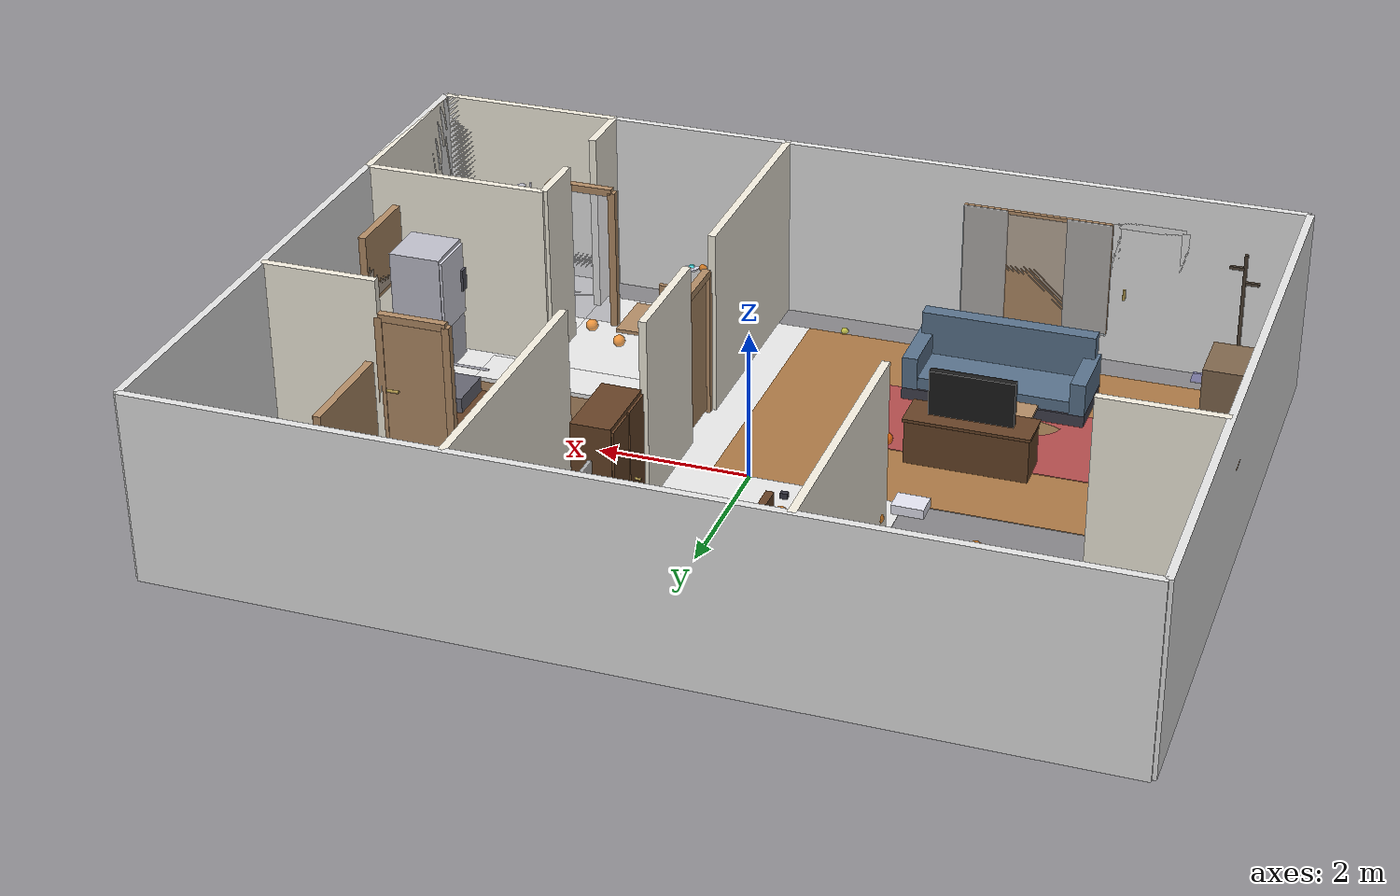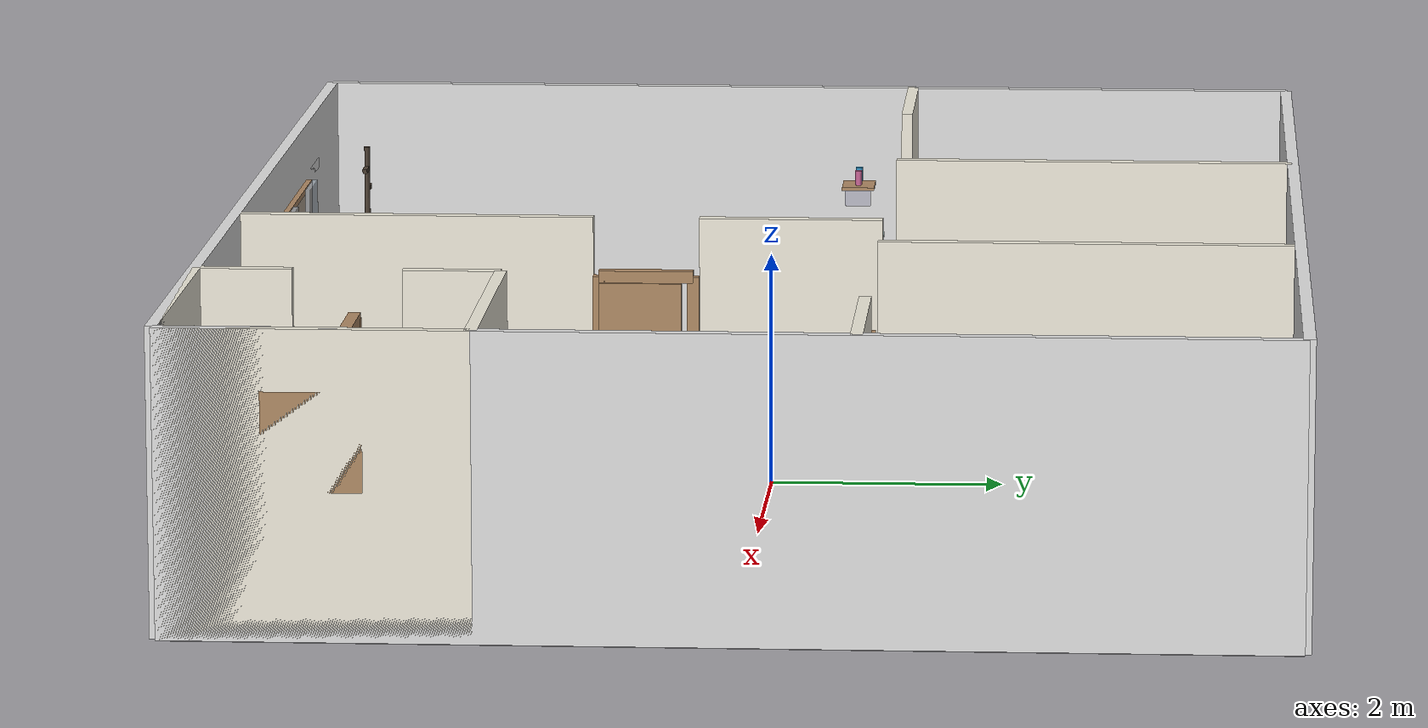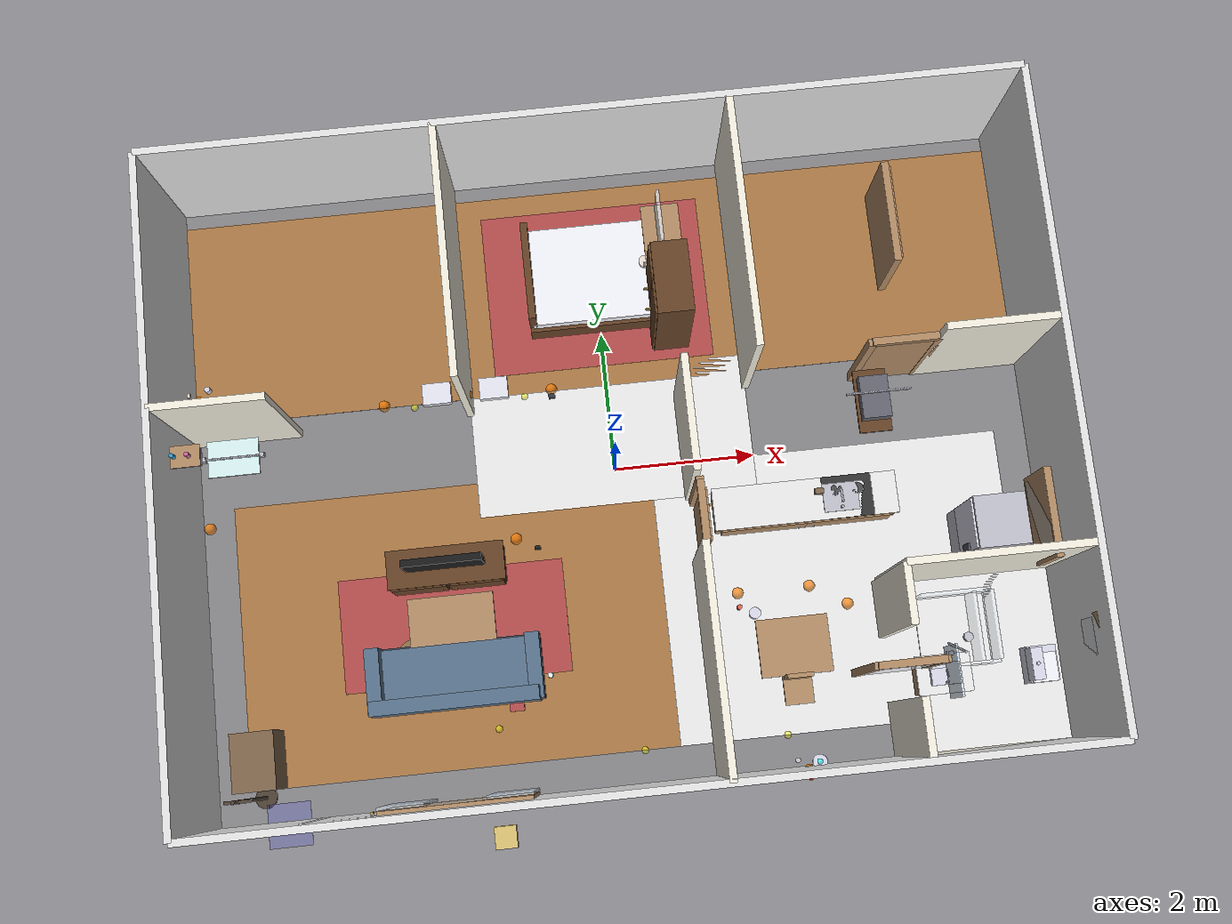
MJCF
<mujoco model="home_complete">

  <!-- 编译器选项 -->
  <compiler angle="degree" coordinate="local" inertiafromgeom="true" meshdir="../assets/meshes"/>

  <!-- 仿真选项 -->
  <option timestep="0.003" iterations="100" gravity="0 0 -9.81">
    <flag warmstart="enable"/>
  </option>

  <!-- 默认物理参数 -->
  <default>
    <geom solref="0.01 1" solimp="0.95 0.95 0.001"/>
    <joint damping="2" armature="0.01"/>
  </default>

  <!-- ====================================================================
       资源定义：纹理和材质
       ====================================================================== -->
  <asset>
    <!-- 地板纹理 -->
    <texture name="wood_floor_texture" type="2d" builtin="checker"
             rgb1="0.72 0.52 0.32" rgb2="0.62 0.42 0.22"
             width="512" height="512" mark="edge" markrgb="0.45 0.30 0.15"/>

    <texture name="tile_floor_texture" type="2d" builtin="checker"
             rgb1="0.95 0.95 0.95" rgb2="0.88 0.88 0.88"
             width="512" height="512" mark="none"/>

    <texture name="carpet_texture" type="2d" builtin="checker"
             rgb1="0.75 0.35 0.35" rgb2="0.65 0.25 0.25"
             width="256" height="256" mark="none"/>

    <!-- 墙壁纹理 -->
    <texture name="wall_texture" type="2d" builtin="flat"
             rgb1="0.96 0.94 0.88" width="512" height="512"/>

    <texture name="wallpaper_texture" type="2d" builtin="gradient"
             rgb1="0.92 0.90 0.85" rgb2="0.88 0.86 0.80"
             width="512" height="512"/>

    <!-- 家具纹理 -->
    <texture name="wood_dark_texture" type="2d" builtin="gradient"
             rgb1="0.45 0.30 0.18" rgb2="0.35 0.22 0.12"
             width="512" height="512" mark="cross" markrgb="0.30 0.18 0.08"/>

    <texture name="wood_light_texture" type="2d" builtin="gradient"
             rgb1="0.75 0.60 0.45" rgb2="0.65 0.50 0.35"
             width="512" height="512" mark="cross" markrgb="0.55 0.40 0.25"/>

    <texture name="fabric_texture" type="2d" builtin="flat"
             rgb1="0.35 0.45 0.55" width="512" height="512"/>

    <texture name="metal_texture" type="2d" builtin="flat"
             rgb1="0.75 0.75 0.80" width="256" height="256"/>

    <texture name="ceramic_texture" type="2d" builtin="gradient"
             rgb1="0.9 0.9 0.95" rgb2="0.8 0.8 0.88" width="256" height="256"/>

    <!-- 材质定义 -->
    <material name="wood_floor_mat" texture="wood_floor_texture"
              specular="0.1" shininess="0.1" reflectance="0.02"/>

    <material name="tile_floor_mat" texture="tile_floor_texture"
              specular="0.1" shininess="0.1" reflectance="0.02"/>

    <material name="carpet_mat" texture="carpet_texture"
              specular="0.05" shininess="0.01" reflectance="0"/>

    <material name="wall_mat" texture="wall_texture"
              specular="0.1" shininess="0.05" reflectance="0.0"/>
    <material name="wall_ext_mat" rgba="0.9 0.9 0.9 1.0" specular="0.1" shininess="0.05" reflectance="0.0"/>

    <material name="wallpaper_mat" texture="wallpaper_texture"
              specular="0.1" shininess="0.05" reflectance="0.01"/>

    <material name="wood_dark_mat" texture="wood_dark_texture"
              specular="0.5" shininess="0.35" reflectance="0.08"/>

    <material name="wood_light_mat" texture="wood_light_texture"
              specular="0.5" shininess="0.35" reflectance="0.08"/>

    <material name="fabric_mat" texture="fabric_texture"
              specular="0.1" shininess="0.02" reflectance="0.01"/>

    <material name="metal_mat" texture="metal_texture"
              specular="0.9" shininess="0.7" reflectance="0.3"/>

    <material name="ceramic_mat" texture="ceramic_texture"
              specular="0.8" shininess="0.6" reflectance="0.15"/>

    <!-- 茶壶网格 -->
    <mesh name="teapot_mesh" file="teapot_simple.obj" scale="1.0 1.0 1.0"/>
    <!-- 机器人材质 -->
    <material name="ur5_metal" rgba="0.6 0.7 0.8 1" specular="0.5" shininess="0.3"/>
    <material name="ur5_joint" rgba="0.2 0.2 0.2 1" specular="0.5" shininess="0.3"/>
  </asset>

  <!-- ====================================================================
       视觉效果设置
       ====================================================================== -->
  <visual>
    <global offwidth="1920" offheight="1080" elevation="-25" azimuth="135" fovy="50"/>
    <quality shadowsize="4096" offsamples="8"/>
    <map force="0.1" zfar="50" znear="0.08"/>
    <headlight ambient="0.4 0.4 0.4" diffuse="0.8 0.8 0.8" specular="0.4 0.4 0.4"/>
  </visual>

  <!-- ====================================================================
       世界定义
       ====================================================================== -->
  <worldbody>
    <!-- 光照系统 -->
    <!-- 主光源（天花板中央） -->
    <light name="ceiling_main" pos="0 -1 2.8" dir="0 0 -1"
           directional="false" diffuse="0.9 0.9 0.85" specular="0.6 0.6 0.6"
           castshadow="false"/>

    <!-- 客厅补光 -->
    <light name="living_room_light" pos="-1 -3 2.5" dir="0 0 -1"
           directional="false" diffuse="0.7 0.7 0.7" specular="0.4 0.4 0.4"
           castshadow="false"/>

    <!-- 厨房补光 -->
    <light name="kitchen_light" pos="2.5 -3.5 2.5" dir="0 0 -1"
           directional="false" diffuse="0.8 0.8 0.8" specular="0.5 0.5 0.5"
           castshadow="false"/>

    <!-- 卧室补光 -->
    <light name="bedroom_light" pos="-2 0.5 2.3" dir="0 0 -1"
           directional="false" diffuse="0.6 0.6 0.55" specular="0.3 0.3 0.3"
           castshadow="false"/>

    <!-- 浴室主光源 -->
    <light name="bathroom_light" pos="-5.2 0.5 2.3" dir="0 0 -1"
           directional="false" diffuse="0.95 0.95 1.0" specular="0.7 0.7 0.7"
           castshadow="false"/>

    <!-- ====================================================================
         地板系统（不同房间不同材质）
         ====================================================================== -->

    <!-- 主地板基础层 -->
    <geom name="floor_base" type="plane" size="6 4.5 0.1"
          rgba="0.5 0.5 0.5 1" condim="3" friction="1.0 0.5 0.01"
          solref="0.02 1" solimp="0.9 0.95 0.001"/>

    <!-- 客厅地板（木地板） -->
    <geom name="floor_living_room" type="box" pos="-2.5 -2 0.005" size="3 2 0.005"
          material="wood_floor_mat" friction="1.0 0.5 0.01" contype="0" conaffinity="0"/>

    <!-- 厨房地板（瓷砖） -->
    <geom name="floor_kitchen" type="box" pos="3.0 -2 0.005" size="2.5 2 0.005"
          material="tile_floor_mat" friction="0.8 0.4 0.01" contype="0" conaffinity="0"/>

    <!-- 卧室地板（木地板） -->
    <geom name="floor_bedroom_mid" type="box" pos="0 2.75 0.005" size="2 1.5 0.005"
          material="wood_floor_mat" friction="1.0 0.5 0.01" contype="0" conaffinity="0"/>
    <geom name="floor_bedroom_left" type="box" pos="-4 2.75 0.005" size="2 1.5 0.005" material="wood_floor_mat" contype="0" conaffinity="0"/>
    <geom name="floor_bedroom_right" type="box" pos="4 2.75 0.005" size="2 1.5 0.005" material="wood_floor_mat" contype="0" conaffinity="0"/>

    <!-- 浴室地板（防滑瓷砖） -->
    <geom name="floor_bathroom" type="box" pos="4.75 -3.25 0.005" size="1.25 1.25 0.005"
          material="tile_floor_mat" friction="1.2 0.6 0.02" contype="0" conaffinity="0"/>

    <!-- 玄关地板（瓷砖） -->
    <geom name="floor_entrance" type="box" pos="0 0.5 0.005" size="2 1 0.005"
          material="tile_floor_mat" friction="0.8 0.4 0.01" contype="0" conaffinity="0"/>

    <!-- 客厅地毯 -->
    <geom name="carpet_living_room" type="box" pos="-2.5 -2 0.012" size="1.6 0.8 0.008"
          material="carpet_mat" friction="1.8 0.9 0.02" contype="0" conaffinity="0"
          solref="0.005 0.5" solimp="0.95 0.98 0.001"/>

    <!-- ====================================================================
         墙壁系统
         ====================================================================== -->

    <!-- 外墙 -->
    <geom name="wall_north" type="box" pos="0 4.5 1.25" size="6 0.05 1.25" material="wall_ext_mat"/>

    <geom name="wall_south" type="box" pos="0 -4.5 1.25" size="6 0.05 1.25" material="wall_ext_mat"/>

    <!-- Modified: 右侧外墙拆分为上下段，为入户门预留门洞 -->
    <geom name="wall_east" type="box" pos="6 0 1.25" size="0.05 4.5 1.25" material="wall_ext_mat"/>

    <geom name="wall_west" type="box" pos="-6 0 1.25" size="0.05 4.5 1.25" material="wall_ext_mat"/>

    <geom name="wall_h_mid_left" type="box" pos="-5.225 1 1.25" size="0.775 0.05 1.25" material="wall_mat"/>
    <geom name="wall_h_mid_right" type="box" pos="5.225 1 1.25" size="0.775 0.05 1.25" material="wall_mat"/>

    <geom name="wall_v_left_top" type="box" pos="-2 2.75 1.25" size="0.05 1.75 1.25" material="wall_mat"/>
    <geom name="wall_v_right_top" type="box" pos="2 2.75 1.25" size="0.05 1.75 1.25" material="wall_mat"/>
    <geom name="wall_v_kitchen_bottom" type="box" pos="1 -2.975 1.25" size="0.05 1.525 1.25" material="wall_mat"/>
    <geom name="wall_v_kitchen_top" type="box" pos="1 0.225 1.25" size="0.05 0.775 1.25" material="wall_mat"/>
    <geom name="bath_wall_e" type="box" pos="6 -3.25 1.25" size="0.05 1.25 1.25" material="wall_mat"/>
    <geom name="bath_wall_n" type="box" pos="4.75 -2 1.25" size="1.25 0.05 1.25" material="wall_mat"/>
    <geom name="bath_wall_s" type="box" pos="4.75 -4.5 1.25" size="1.25 0.05 1.25" material="wall_mat"/>
    <geom name="bath_wall_w_bottom" type="box" pos="3.5 -4.1 1.25" size="0.05 0.4 1.25" material="wall_mat"/>
    <geom name="bath_wall_w_top" type="box" pos="3.5 -2.4 1.25" size="0.05 0.4 1.25" material="wall_mat"/>

    <!-- ====================================================================
         门系统（带铰链物理）
         ====================================================================== -->

    <body name="main_door" pos="-4 -4.5 0">
      <geom name="main_door_frame_left" type="box" pos="-0.45 0 1.0" size="0.05 0.05 1.0" material="wall_ext_mat"/>
      <geom name="main_door_frame_right" type="box" pos="0.45 0 1.0" size="0.05 0.05 1.0" material="wall_ext_mat"/>
      <geom name="main_door_frame_top" type="box" pos="0 0 2.0" size="0.45 0.05 0.05" material="wall_ext_mat"/>
      <body name="main_door_panel" pos="-0.45 0 1.0">
        <joint name="main_door_hinge" type="hinge" pos="0 0 0" axis="0 0 1" range="-5 90" damping="5" armature="0.1"/>
        <geom name="main_door_board" type="box" pos="0.45 0 0" size="0.45 0.04 0.95" rgba="0.8 0.8 0.82 1"/>
        <geom name="main_door_handle" type="cylinder" pos="0.75 0.06 0" size="0.02 0.08" rgba="0.7 0.6 0.3 1"/>
      </body>
    </body>

    <!-- 门3：厨房门 -->
    <body name="kitchen_door" pos="1 -1 0">
      <geom name="kitchen_door_frame_left" type="box" pos="0.05 -0.4 1.0" size="0.05 0.05 1.0"
            material="wood_light_mat"/>
      <geom name="kitchen_door_frame_right" type="box" pos="0.05 0.4 1.0" size="0.05 0.05 1.0"
            material="wood_light_mat"/>
      <geom name="kitchen_door_frame_top" type="box" pos="0.05 0 2.0" size="0.05 0.4 0.05"
            material="wood_light_mat"/>

      <!-- 门板 -->
      <body name="kitchen_door_panel" pos="0.05 -0.4 1.0">
        <joint name="kitchen_door_hinge" type="hinge" pos="0 0 0" axis="0 0 1"
               range="-5 90" damping="5" armature="0.1"/>
        <geom name="kitchen_door_board" type="box" pos="0.04 0.35 0" size="0.04 0.35 0.95"
              material="wood_light_mat" mass="10" friction="1.0 0.5 0.01"/>
        <geom name="kitchen_door_handle" type="cylinder" pos="0.1 0.6 0" size="0.02 0.08"
              rgba="0.7 0.6 0.3 1" mass="0.2" euler="0 90 0"/>
      </body>
    </body>

    <!-- 门4：浴室门 -->
    <body name="bathroom_door" pos="3.5 -3.25 0">
      <geom name="bathroom_door_frame_left" type="box" pos="-0.45 0 1.0" size="0.05 0.05 1.0" material="wood_light_mat"/>
      <geom name="bathroom_door_frame_right" type="box" pos="0.45 0 1.0" size="0.05 0.05 1.0" material="wood_light_mat"/>
      <geom name="bathroom_door_frame_top" type="box" pos="0 0 2.0" size="0.45 0.05 0.05" material="wood_light_mat"/>
      <body name="bathroom_door_panel" pos="-0.45 0 1.0">
        <joint name="bathroom_door_hinge" type="hinge" pos="0 0 0" axis="0 0 1" range="-5 90" damping="5" armature="0.1"/>
        <geom name="bathroom_door_board" type="box" pos="0.45 0 0" size="0.45 0.04 0.95" rgba="0.95 0.95 0.98 0.7" mass="10" friction="1.0 0.5 0.01"/>
        <geom name="bathroom_door_handle" type="cylinder" pos="0.75 0.06 0" size="0.02 0.08" rgba="0.85 0.85 0.88 1" mass="0.2" euler="0 90 0"/>
      </body>
    </body>

    <body name="entrance_door" pos="4 1 0">
      <geom name="entrance_door_frame_left" type="box" pos="-0.45 0 1.0" size="0.05 0.05 1.0" material="wood_light_mat"/>
      <geom name="entrance_door_frame_right" type="box" pos="0.45 0 1.0" size="0.05 0.05 1.0" material="wood_light_mat"/>
      <geom name="entrance_door_frame_top" type="box" pos="0 0 2.0" size="0.45 0.05 0.05" material="wood_light_mat"/>
      <body name="entrance_door_panel" pos="-0.45 0 1.0">
        <joint name="entrance_door_hinge" type="hinge" pos="0 0 0" axis="0 0 1" range="-5 90" damping="5" armature="0.1"/>
        <geom name="entrance_door_board" type="box" pos="0.45 0 0" size="0.45 0.04 0.95" material="wood_light_mat" mass="10" friction="1.0 0.5 0.01"/>
        <geom name="entrance_door_handle" type="cylinder" pos="0.75 0.06 0" size="0.02 0.08" rgba="0.7 0.6 0.3 1" mass="0.2" euler="0 90 0"/>
      </body>
    </body>

    <!-- ====================================================================
         玄关家具
         ====================================================================== -->

    <!-- 鞋柜 -->
    <body name="shoe_cabinet" pos="-5.3 -3.6 0.35">
      <geom name="shoe_cabinet_body" type="box" size="0.3 0.4 0.4" rgba="0.5 0.4 0.3 1"/>
    </body>

    <!-- 衣架 -->
    <body name="coat_rack" pos="-5.3 -4.1 0">
      <geom name="coat_rack_base" type="cylinder" size="0.15 0.02"
            rgba="0.3 0.25 0.2 1" mass="3"/>
      <geom name="coat_rack_pole" type="cylinder" pos="0 0 1.0" size="0.025 1.0"
            rgba="0.3 0.25 0.2 1" mass="2"/>
      <geom name="coat_rack_hook1" type="box" pos="0.1 0 1.8" size="0.1 0.02 0.02"
            rgba="0.3 0.25 0.2 1" mass="0.1"/>
      <geom name="coat_rack_hook2" type="box" pos="-0.1 0 1.6" size="0.1 0.02 0.02"
            rgba="0.3 0.25 0.2 1" mass="0.1"/>
    </body>

    <!-- ====================================================================
         客厅家具
         ====================================================================== -->

    <!-- 茶几 -->
    <body name="coffee_table" pos="-2.5 -2 0.35">
      <geom name="table_top" type="box" size="0.6 0.4 0.025"
            material="wood_light_mat" mass="12" friction="0.8 0.4 0.01"/>
      <geom name="leg_1" type="cylinder" pos="0.5 0.3 -0.2" size="0.03 0.175"
            rgba="0.35 0.25 0.15 1" mass="1.2" friction="1.0 0.5 0.01"/>
      <geom name="leg_2" type="cylinder" pos="0.5 -0.3 -0.2" size="0.03 0.175"
            rgba="0.35 0.25 0.15 1" mass="1.2" friction="1.0 0.5 0.01"/>
      <geom name="leg_3" type="cylinder" pos="-0.5 0.3 -0.2" size="0.03 0.175"
            rgba="0.35 0.25 0.15 1" mass="1.2" friction="1.0 0.5 0.01"/>
      <geom name="leg_4" type="cylinder" pos="-0.5 -0.3 -0.2" size="0.03 0.175"
            rgba="0.35 0.25 0.15 1" mass="1.2" friction="1.0 0.5 0.01"/>
      <!-- 可移动物品已移至 worldbody 顶层 -->
    </body>

    <!-- 沙发 -->
    <body name="sofa" pos="-2.5 -2.7 0.25">
      <geom name="sofa_base" type="box" size="1.2 0.45 0.08" rgba="0.25 0.25 0.30 1" mass="20" friction="1.2 0.6 0.01"/>
      <geom name="sofa_seat" type="box" pos="0 0 0.16" size="1.15 0.42 0.08" material="fabric_mat" mass="8" friction="1.5 0.8 0.02"/>
      <geom name="sofa_backrest" type="box" pos="0 -0.38 0.45" size="1.15 0.1 0.37" material="fabric_mat" mass="12"/>
      <geom name="sofa_armrest_left" type="box" pos="-1.1 0 0.30" size="0.1 0.45 0.22" material="fabric_mat" mass="4"/>
      <geom name="sofa_armrest_right" type="box" pos="1.1 0 0.30" size="0.1 0.45 0.22" material="fabric_mat" mass="4"/>

      <!-- 靠垫 -->
    </body>

    <!-- 电视柜 -->
    <body name="tv_stand" pos="-2.5 -1.2 0.3">
      <geom name="tv_stand_body" type="box" size="0.8 0.25 0.3"
            material="wood_dark_mat" mass="30"/>
      <geom name="tv_stand_top" type="box" pos="0 0 0.32" size="0.82 0.27 0.02"
            material="wood_dark_mat" mass="8"/>

      <!-- 可开关的左柜门 -->
      <body name="tv_stand_door_left" pos="-0.4 -0.27 0">
        <joint name="tv_door_left_hinge" type="hinge" pos="-0.38 0 0" axis="0 0 1"
               range="-90 5" damping="3" armature="0.05"/>
        <geom name="tv_door_left_panel" type="box" pos="0 0 0" size="0.38 0.02 0.28"
              material="wood_dark_mat" mass="3" friction="1.0 0.5 0.01"/>
        <geom name="tv_door_left_knob" type="sphere" pos="0.3 -0.04 0" size="0.015"
              rgba="0.7 0.6 0.3 1" mass="0.05"/>
      </body>

      <!-- 可开关的右柜门 -->
      <body name="tv_stand_door_right" pos="0.4 -0.27 0">
        <joint name="tv_door_right_hinge" type="hinge" pos="0.38 0 0" axis="0 0 1"
               range="-5 90" damping="3" armature="0.05"/>
        <geom name="tv_door_right_panel" type="box" pos="0 0 0" size="0.38 0.02 0.28"
              material="wood_dark_mat" mass="3" friction="1.0 0.5 0.01"/>
        <geom name="tv_door_right_knob" type="sphere" pos="-0.3 -0.04 0" size="0.015"
              rgba="0.7 0.6 0.3 1" mass="0.05"/>
      </body>

      <!-- 电视 -->
      <geom name="tv_screen" type="box" pos="0 0 0.6" size="0.55 0.05 0.35"
            rgba="0.1 0.1 0.1 1" mass="10"/>
      <geom name="tv_stand_pole" type="cylinder" pos="0 0 0.45" size="0.05 0.1"
            rgba="0.2 0.2 0.2 1" mass="2"/>

      <!-- 可移动物品：遥控器 -->
    </body>
    <!-- 清理装饰：移除盆栽 -->

    <!-- 书架 -->
    <!-- 清理装饰：移除书架与装饰书本 -->

    <!-- ====================================================================
         厨房家具
         ====================================================================== -->

    <!-- 冰箱 -->
    <body name="refrigerator" pos="5.0 -1.5 0.85">
      <geom name="fridge_body" type="box" size="0.35 0.35 0.85"
            material="metal_mat" mass="80"/>
      <geom name="fridge_door" type="box" pos="-0.36 0 0.3" size="0.02 0.33 0.5"
            rgba="0.85 0.85 0.9 1" mass="8"/>
      <geom name="fridge_handle" type="box" pos="-0.4 -0.28 0.3" size="0.015 0.06 0.15"
            rgba="0.3 0.3 0.35 1" mass="0.2"/>
    </body>

    <!-- 厨房操作台 + 水槽 -->
    <body name="kitchen_counter" pos="2.6 -0.8 0.45">
      <!-- 台面 -->
      <geom name="counter_top" type="box" size="1.3 0.3 0.03"
            material="tile_floor_mat" mass="40"/>
      <!-- 柜体 -->
      <geom name="counter_cabinet" type="box" pos="0 0 -0.42" size="1.28 0.28 0.42"
            material="wood_light_mat" mass="35"/>

      <!-- 可开关的左柜门 -->
      <body name="counter_door_left" pos="-0.6 -0.3 -0.42">
        <joint name="counter_door_left_hinge" type="hinge" pos="-0.65 0 0" axis="0 0 1"
               range="-90 5" damping="3" armature="0.05"/>
        <geom name="counter_door_left_panel" type="box" pos="0 0 0" size="0.6 0.02 0.4"
              material="wood_light_mat" mass="3" friction="1.0 0.5 0.01"/>
        <geom name="counter_door_left_knob" type="sphere" pos="0.5 -0.04 0.2" size="0.015"
              rgba="0.85 0.85 0.88 1" mass="0.05"/>
      </body>

      <!-- 可开关的右柜门 -->
      <body name="counter_door_right" pos="0.6 -0.3 -0.42">
        <joint name="counter_door_right_hinge" type="hinge" pos="0.65 0 0" axis="0 0 1"
               range="-5 90" damping="3" armature="0.05"/>
        <geom name="counter_door_right_panel" type="box" pos="0 0 0" size="0.6 0.02 0.4"
              material="wood_light_mat" mass="3" friction="1.0 0.5 0.01"/>
        <geom name="counter_door_right_knob" type="sphere" pos="-0.5 -0.04 0.2" size="0.015"
              rgba="0.85 0.85 0.88 1" mass="0.05"/>
      </body>

      <!-- 水槽 -->
      <geom name="sink_basin" type="box" pos="0.5 0 -0.05" size="0.25 0.2 0.1"
            material="metal_mat" mass="5"/>
      <!-- 水龙头 -->
      <geom name="faucet_base" type="cylinder" pos="0.5 -0.15 0.08" size="0.02 0.05"
            material="metal_mat" mass="0.3"/>
      <geom name="faucet_spout" type="cylinder" pos="0.5 0 0.18" size="0.015 0.1"
            material="metal_mat" mass="0.2" euler="75 0 0"/>
      <body name="knife_block" pos="0.2 0.1 0.06">
        <geom name="knife_block_body" type="box" size="0.06 0.04 0.08" rgba="0.5 0.4 0.3 1" mass="1.2"/>
      </body>
    </body>

    <!-- 灶台 -->
    <body name="stove" pos="3.2 -0.8 0.45">
      <geom name="stove_top" type="box" size="0.35 0.3 0.03"
            rgba="0.2 0.2 0.2 1" mass="25"/>
      <geom name="stove_body" type="box" pos="0 0 -0.42" size="0.33 0.28 0.42"
            material="wood_light_mat" mass="30"/>

      <!-- 灶眼 -->
      <geom name="burner_1" type="cylinder" pos="-0.15 0.1 0.04" size="0.08 0.01"
            rgba="0.3 0.3 0.3 1" mass="0.5"/>
      <geom name="burner_2" type="cylinder" pos="0.15 0.1 0.04" size="0.08 0.01"
            rgba="0.3 0.3 0.3 1" mass="0.5"/>
    </body>

    <!-- 餐桌 -->
    <body name="dining_table" pos="2.2 -2.8 0.4">
      <geom name="dining_table_top" type="box" size="0.5 0.4 0.025"
            material="wood_light_mat" mass="15"/>
      <geom name="dining_table_leg" type="cylinder" pos="0 0 -0.21" size="0.04 0.19"
            rgba="0.35 0.25 0.15 1" mass="3"/>

      <!-- 可移动物品：盘子 -->

      <!-- 可移动物品：玻璃杯 -->

      <!-- 可移动物品：苹果 -->

      <!-- 可移动物品：香蕉 -->
    </body>

    <!-- 餐椅1 -->
    <body name="dining_chair_1" pos="2.2 -3.4 0.25">
      <geom name="chair1_seat" type="box" size="0.2 0.2 0.03"
            material="wood_light_mat" mass="3"/>
      <geom name="chair1_back" type="box" pos="0 0.18 0.25" size="0.18 0.03 0.25"
            material="wood_light_mat" mass="2"/>
      <geom name="chair1_leg1" type="cylinder" pos="0.15 0.15 -0.135" size="0.02 0.115"
            rgba="0.35 0.25 0.15 1" mass="0.3"/>
      <geom name="chair1_leg2" type="cylinder" pos="-0.15 0.15 -0.135" size="0.02 0.115"
            rgba="0.35 0.25 0.15 1" mass="0.3"/>
    </body>

    <!-- ====================================================================
         卧室家具
         ====================================================================== -->

    <body name="bed" pos="0 2.75 0.4">
      <geom name="bed_frame" type="box" size="1.0 0.75 0.18" material="wood_dark_mat" mass="45"/>
      <geom name="bed_mattress" type="box" pos="0 0 0.23" size="0.95 0.7 0.12" rgba="0.95 0.95 0.98 1" mass="22" friction="1.5 0.8 0.02" solref="0.005 0.8" solimp="0.9 0.95 0.001"/>
      <geom name="bed_headboard" type="box" pos="-0.95 0 0.5" size="0.05 0.7 0.25" material="wood_dark_mat" mass="10"/>
      <geom name="bed_blanket" type="box" pos="0.2 0 0.29" size="0.7 0.65 0.015" rgba="0.9 0.9 0.95 1" mass="5" friction="1.2 0.6 0.02"/>
    </body>

    <!-- 衣柜 -->
    <body name="wardrobe" pos="1.0 2.2 1.0">
      <geom name="wardrobe_body" type="box" size="0.25 0.5 1.0"
            material="wood_dark_mat" mass="70"/>
      <geom name="wardrobe_door_left" type="box" pos="-0.26 -0.25 0" size="0.02 0.23 0.95"
            material="wood_dark_mat" mass="8"/>
      <geom name="wardrobe_door_right" type="box" pos="-0.26 0.25 0" size="0.02 0.23 0.95"
            material="wood_dark_mat" mass="8"/>
      <geom name="wardrobe_handle_left" type="cylinder" pos="-0.3 -0.15 0" size="0.015 0.06"
            rgba="0.7 0.6 0.3 1" mass="0.1" euler="0 90 0"/>
      <geom name="wardrobe_handle_right" type="cylinder" pos="-0.3 0.15 0" size="0.015 0.06"
            rgba="0.7 0.6 0.3 1" mass="0.1" euler="0 90 0"/>
    </body>

    <!-- 床头柜1 -->
    <body name="nightstand_1" pos="0.7 2.75 0.3">
      <geom name="nightstand1_body" type="box" size="0.25 0.2 0.3"
            material="wood_light_mat" mass="12"/>
      <geom name="nightstand1_top" type="box" pos="0 0 0.32" size="0.27 0.22 0.02"
            material="wood_light_mat" mass="3"/>

      <!-- 可拉出的抽屉 -->
      <body name="nightstand1_drawer" pos="0 -0.22 0.15">
        <joint name="nightstand1_drawer_slide" type="slide" pos="0 0 0" axis="0 1 0"
               range="0 0.15" damping="5" armature="0.05"/>
        <geom name="drawer1_front" type="box" pos="0 0 0" size="0.22 0.02 0.12"
              material="wood_light_mat" mass="1.5" friction="1.0 0.5 0.01"/>
        <geom name="drawer1_body" type="box" pos="0 0.06 0" size="0.22 0.06 0.11"
              material="wood_light_mat" mass="1" friction="0.8 0.4 0.01"/>
        <geom name="drawer1_handle" type="box" pos="0 -0.03 0" size="0.06 0.01 0.015"
              rgba="0.7 0.6 0.3 1" mass="0.05"/>
      </body>

      <!-- 台灯 -->
      <body name="lamp_1" pos="0 0 0.37">
        <geom name="lamp1_base" type="cylinder" size="0.06 0.015"
              rgba="0.2 0.2 0.2 1" mass="0.5"/>
        <geom name="lamp1_pole" type="cylinder" pos="0 0 0.15" size="0.01 0.15"
              rgba="0.3 0.3 0.3 1" mass="0.2"/>
        <geom name="lamp1_shade" type="cylinder" pos="0 0 0.33" size="0.08 0.04"
              rgba="0.95 0.9 0.85 0.8" mass="0.1"/>
      </body>
    </body>
    <geom name="bedroom_rug" type="box" pos="0 2.75 0.01" size="1.6 1.2 0.005" material="carpet_mat"/>
    <body name="wardrobe_interior" pos="3.7 0.5 1.0">
      <geom name="wardrobe_shelf" type="box" pos="0 0 -0.4" size="0.23 0.45 0.02" material="wood_dark_mat"/>
      <geom name="wardrobe_box" type="box" pos="0 0 -0.2" size="0.2 0.3 0.1" rgba="0.4 0.4 0.45 1"/>
      <geom name="wardrobe_hanger_bar" type="cylinder" pos="0 0 0.2" size="0.015 0.45" material="metal_mat" euler="0 90 0"/>
    </body>

    <!-- 床头柜2 -->
    <body name="nightstand_2" pos=" -0.7 2.75 0.3">
      <geom name="nightstand2_body" type="box" size="0.25 0.2 0.3"
            material="wood_light_mat" mass="12"/>
      <geom name="nightstand2_top" type="box" pos="0 0 0.32" size="0.27 0.22 0.02"
            material="wood_light_mat" mass="3"/>

      <!-- 可拉出的抽屉 -->
      <body name="nightstand2_drawer" pos="0 -0.22 0.15">
        <joint name="nightstand2_drawer_slide" type="slide" pos="0 0 0" axis="0 1 0"
               range="0 0.15" damping="5" armature="0.05"/>
        <geom name="drawer2_front" type="box" pos="0 0 0" size="0.22 0.02 0.12"
              material="wood_light_mat" mass="1.5" friction="1.0 0.5 0.01"/>
        <geom name="drawer2_body" type="box" pos="0 0.06 0" size="0.22 0.06 0.11"
              material="wood_light_mat" mass="1" friction="0.8 0.4 0.01"/>
        <geom name="drawer2_handle" type="box" pos="0 -0.03 0" size="0.06 0.01 0.015"
              rgba="0.7 0.6 0.3 1" mass="0.05"/>

        <!-- 抽屉里的可移动物品：闹钟 -->
      </body>
    </body>

    <!-- 梳妆台 -->
    <body name="dresser" pos="1.0 3.2 0.4">
      <geom name="dresser_body" type="box" size="0.25 0.4 0.4"
            material="wood_light_mat" mass="35"/>
      <geom name="dresser_top" type="box" pos="0 0 0.42" size="0.27 0.42 0.02"
            material="wood_light_mat" mass="8"/>

      <!-- 镜子 -->
      <geom name="dresser_mirror" type="box" pos="-0.05 0 0.85" size="0.02 0.35 0.4"
            rgba="0.9 0.95 1.0 0.7" mass="3"/>
    </body>

    <!-- ====================================================================
         浴室家具
         ====================================================================== -->

    <!-- 洗手池 + 浴室柜 -->
    <body name="bathroom_sink" pos="4.2 -3.4 0.45">
      <!-- 柜体 -->
      <geom name="sink_cabinet_body" type="box" pos="0 0 -0.4" size="0.35 0.25 0.4"
            material="wood_light_mat" mass="25"/>
      <!-- 台面 -->
      <geom name="sink_countertop" type="box" size="0.38 0.27 0.03"
            material="tile_floor_mat" mass="12"/>

      <!-- 水池 -->
      <geom name="bathroom_sink_basin" type="box" pos="0 0 0.05" size="0.2 0.15 0.08"
            material="ceramic_mat" mass="5"/>
      <!-- 水龙头 -->
      <geom name="sink_faucet_base" type="cylinder" pos="0 -0.12 0.18" size="0.015 0.05"
            material="metal_mat" mass="0.2"/>
      <geom name="sink_faucet_spout" type="cylinder" pos="0 0 0.24" size="0.012 0.06"
            material="metal_mat" mass="0.15" euler="60 0 0"/>

      <!-- 镜子 -->
      <geom name="bathroom_mirror" type="box" pos="-0.02 0 0.75" size="0.01 0.35 0.4"
            rgba="0.9 0.95 1.0 0.85" mass="3" contype="0" conaffinity="0"/>

      <!-- 可交互的柜门 -->

      <!-- 可移动物品：牙刷架 -->

      <!-- 可移动物品：香皂 -->
    </body>

    <!-- 马桶 -->
    <body name="toilet" pos="5.6 -3.4 0.2">
      <!-- 马桶底座 -->
      <geom name="toilet_base" type="box" size="0.2 0.25 0.2"
            material="ceramic_mat" mass="25"/>
      <!-- 马桶水箱 -->
      <geom name="toilet_tank" type="box" pos="-0.15 0 0.35" size="0.08 0.22 0.15"
            material="ceramic_mat" mass="15"/>

      <!-- 马桶座圈（可交互） -->
      <body name="toilet_seat" pos="0 0 0.22">
        <joint name="toilet_seat_hinge" type="hinge" pos="0 0.2 0" axis="1 0 0"
               range="0 100" damping="2" armature="0.03"/>
        <geom name="toilet_seat_ring" type="box" pos="0 -0.05 0" size="0.18 0.2 0.02"
              rgba="0.95 0.95 0.98 1" mass="1.5" friction="0.8 0.4 0.01"/>
      </body>

      <!-- 冲水按钮 -->
      <geom name="toilet_flush_button" type="cylinder" pos="-0.15 0 0.52" size="0.025 0.01"
            rgba="0.85 0.85 0.90 1" mass="0.05"/>
    </body>

    <!-- 淋浴区 -->
    <body name="shower_area" pos="4.5 -2.8 0">
      <!-- 淋浴房底座 -->
      <geom name="shower_base" type="box" pos="0 0 0.02" size="0.5 0.5 0.02"
            material="tile_floor_mat" mass="20"/>

      <!-- 淋浴房玻璃墙（前） -->
      <geom name="shower_glass_front" type="box" pos="0.5 0 0.3" size="0.02 0.48 0.3"
            rgba="0.9 0.95 1.0 0.3" mass="8" contype="0" conaffinity="0"/>
      <!-- 淋浴房玻璃墙（左） -->
      <geom name="shower_glass_left" type="box" pos="0 -0.5 0.3" size="0.48 0.02 0.3"
            rgba="0.9 0.95 1.0 0.3" mass="8" contype="0" conaffinity="0"/>
      <geom name="shower_glass_right" type="box" pos="0 0.5 0.3" size="0.48 0.02 0.3"
            rgba="0.9 0.95 1.0 0.3" mass="8" contype="0" conaffinity="0"/>
      <geom name="shower_partition" type="box" pos="0.25 0 0.3" size="0.02 0.48 0.3"
            rgba="0.9 0.95 1.0 0.25" mass="6" contype="1" conaffinity="1"/>

      <!-- 淋浴头支架 -->
      <geom name="shower_pipe" type="cylinder" pos="-0.3 -0.3 1.5" size="0.015 0.5"
            material="metal_mat" mass="1" euler="10 0 0"/>
      <!-- 淋浴头 -->
      <geom name="shower_head" type="cylinder" pos="-0.25 -0.2 2.0" size="0.06 0.03"
            material="metal_mat" mass="0.5"/>

      <!-- 花洒龙头 -->
      <geom name="shower_faucet" type="box" pos="-0.3 -0.35 1.0" size="0.04 0.03 0.06"
            material="metal_mat" mass="0.3"/>
    </body>

    <!-- 毛巾架 -->
    <body name="towel_rack" pos="-5.2 0.5 1.2">
      <!-- 横杆 -->
      <geom name="towel_bar" type="cylinder" size="0.015 0.4"
            material="metal_mat" mass="0.8" euler="0 90 0"/>
      <!-- 支架 -->
      <geom name="towel_bracket_left" type="box" pos="-0.4 0 0" size="0.03 0.03 0.05"
            material="metal_mat" mass="0.2"/>
      <geom name="towel_bracket_right" type="box" pos="0.4 0 0" size="0.03 0.03 0.05"
            material="metal_mat" mass="0.2"/>

      <!-- 可移动的毛巾 -->
    </body>

    <!-- 浴室储物架 -->
    <body name="bathroom_shelf" pos="-5.8 0.5 1.6">
      <geom name="bath_shelf_1" type="box" size="0.25 0.15 0.015"
            material="wood_light_mat" mass="2"/>
      <geom name="bath_shelf_bracket_l" type="box" pos="-0.22 0 -0.08" size="0.015 0.12 0.08"
            material="metal_mat" mass="0.3"/>
      <geom name="bath_shelf_bracket_r" type="box" pos="0.22 0 -0.08" size="0.015 0.12 0.08"
            material="metal_mat" mass="0.3"/>

      <!-- 可移动物品：洗发水 -->

      <!-- 可移动物品：沐浴露 -->
    </body>

    <!-- ====================================================================
         装饰物品
         ====================================================================== -->

    <!-- 清理装饰：移除相框、时钟、窗帘 -->

    <!-- ====================================================================
         窗户系统
         ====================================================================== -->

    <!-- 客厅窗户（大窗） -->
    <body name="living_room_window" pos="-2.5 -4.45 1.2">
      <!-- 窗框 -->
      <geom name="lr_window_frame" type="box" size="1.0 0.05 0.8"
            material="wood_light_mat" contype="0" conaffinity="0"/>
      <!-- 玻璃 -->
      <geom name="lr_window_glass" type="box" pos="0 0.03 0" size="0.95 0.02 0.75"
            rgba="0.85 0.92 0.98 0.4" mass="5" contype="0" conaffinity="0"/>
      <!-- 窗帘 -->
      <geom name="lr_window_curtain_left" type="box" pos="-0.7 0.08 0" size="0.3 0.02 0.8"
            rgba="0.75 0.8 0.85 0.7" contype="0" conaffinity="0"/>
      <geom name="lr_window_curtain_right" type="box" pos="0.7 0.08 0" size="0.3 0.02 0.8"
            rgba="0.75 0.8 0.85 0.7" contype="0" conaffinity="0"/>
    </body>

    <!-- 卧室窗户（可开关） -->
    <body name="bedroom_window" pos="4.05 2.8 1.3">
      <!-- 窗框 -->
      <geom name="br_window_frame_outer" type="box" size="0.05 0.7 0.7"
            material="wood_light_mat" contype="1" conaffinity="1"/>

      <!-- 可开关的窗扇 -->
      <body name="bedroom_window_sash" pos="0 0 0">
        <joint name="bedroom_window_hinge" type="hinge" pos="0 -0.7 0" axis="0 0 1"
               range="0 90" damping="3" armature="0.05"/>
        <geom name="br_window_frame" type="box" pos="0.04 0 0" size="0.04 0.65 0.65"
              material="wood_light_mat" mass="6"/>
        <geom name="br_window_glass" type="box" pos="0.08 0 0" size="0.01 0.6 0.6"
              rgba="0.85 0.92 0.98 0.5" mass="3"/>
      </body>
    </body>

    <!-- 厨房窗户（小窗） -->
    <body name="kitchen_window" pos="5.6 -1.5 1.5">
      <!-- 窗框 -->
      <geom name="k_window_frame" type="box" size="0.05 0.6 0.5"
            material="wood_light_mat" contype="0" conaffinity="0"/>
      <!-- 玻璃 -->
      <geom name="k_window_glass" type="box" pos="-0.03 0 0" size="0.02 0.55 0.45"
            rgba="0.85 0.92 0.98 0.4" mass="3" contype="0" conaffinity="0"/>
    </body>

    <!-- 浴室窗户（磨砂玻璃） -->
    <body name="bathroom_window" pos="6.0 -3.25 1.6">
      <!-- 窗框 -->
      <geom name="bath_window_frame" type="box" size="0.05 0.4 0.4"
            material="wood_light_mat" contype="0" conaffinity="0"/>
      <!-- 磨砂玻璃 -->
      <geom name="bath_window_glass" type="box" pos="-0.03 0 0" size="0.02 0.35 0.35"
            rgba="0.92 0.95 0.98 0.6" mass="2" contype="0" conaffinity="0"/>
    </body>

    <!-- ====================================================================
         机器人放置区域
         ====================================================================== -->

    <!-- 客厅机器人操作区（机械臂） -->
    <body name="robot_workspace_living" pos="-3 -2.5 0.01">
      <geom name="workspace_platform" type="cylinder" size="0.4 0.01"
            rgba="0.3 0.8 0.3 0.3" contype="0" conaffinity="0"/>
      <site name="robot_arm_mount" pos="0 0 0.02" size="0.03" rgba="0 1 0 0.8"/>
      <body name="ur5_base_link" pos="0 0 0">
        <geom name="ur5_base" type="cylinder" size="0.06 0.05" material="ur5_metal" mass="4"/>
        <body name="shoulder_link" pos="0 0 0.089">
          <joint name="shoulder_pan_joint" type="hinge" axis="0 0 1" range="-180 180" damping="0.5" armature="0.1"/>
          <geom name="ur5_shoulder" type="cylinder" size="0.05 0.04" material="ur5_joint" mass="3.7"/>
          <body name="upper_arm_link" pos="0 0.13585 0" euler="0 90 0">
            <joint name="shoulder_lift_joint" type="hinge" axis="0 0 1" range="-180 180" damping="0.5" armature="0.1"/>
            <geom name="ur5_upper_arm" type="capsule" size="0.045" fromto="0 0 0 0.425 0 0" material="ur5_metal" mass="8.4"/>
            <body name="forearm_link" pos="0.425 0 0">
              <joint name="elbow_joint" type="hinge" axis="0 0 1" range="-180 180" damping="0.5" armature="0.1"/>
              <geom name="ur5_forearm" type="capsule" size="0.04" fromto="0 0 0 0.39225 0 0" material="ur5_metal" mass="2.3"/>
              <body name="wrist_1_link" pos="0.39225 0 0.10915" euler="0 90 0">
                <joint name="wrist_1_joint" type="hinge" axis="0 0 1" range="-180 180" damping="0.1" armature="0.01"/>
                <geom name="ur5_wrist_1" type="cylinder" size="0.035 0.03" material="ur5_joint" mass="1.2"/>
                <body name="wrist_2_link" pos="0 0.09465 0">
                  <joint name="wrist_2_joint" type="hinge" axis="0 0 1" range="-180 180" damping="0.1" armature="0.01"/>
                  <geom name="ur5_wrist_2" type="cylinder" size="0.035 0.03" material="ur5_joint" mass="1.2"/>
                  <body name="wrist_3_link" pos="0 0 0.09465" euler="0 90 0">
                    <joint name="wrist_3_joint" type="hinge" axis="0 0 1" range="-180 180" damping="0.1" armature="0.01"/>
                    <geom name="ur5_wrist_3" type="cylinder" size="0.03 0.02" material="ur5_joint" mass="0.8"/>
                    <site name="ee_site" pos="0 0 0.02" size="0.01" rgba="1 0 0 0.5"/>
                    <body name="gripper_base" pos="0 0 0.03">
                      <geom name="gripper_palm" type="box" size="0.03 0.03 0.01" rgba="0.3 0.3 0.3 1" mass="0.2"/>
                      <body name="left_finger" pos="0 0.02 0.02">
                        <joint name="left_finger_joint" type="slide" axis="0 1 0" range="0 0.04" damping="0.5"/>
                        <geom name="left_finger_geom" type="box" size="0.008 0.01 0.03" rgba="0.2 0.2 0.2 1" mass="0.05"/>
                      </body>
                      <body name="right_finger" pos="0 -0.02 0.02">
                        <joint name="right_finger_joint" type="slide" axis="0 -1 0" range="0 0.04" damping="0.5"/>
                        <geom name="right_finger_geom" type="box" size="0.008 0.01 0.03" rgba="0.2 0.2 0.2 1" mass="0.05"/>
                      </body>
                    </body>
                  </body>
                </body>
              </body>
            </body>
          </body>
        </body>
      </body>
    </body>

    <!-- 玄关人形机器人生成点 -->
    <body name="robot_spawn_humanoid" pos="-5 -4.5 0.01">
      <geom name="spawn_platform_humanoid" type="box" size="0.3 0.3 0.01"
            rgba="0.3 0.3 0.8 0.3" contype="0" conaffinity="0"/>
      <site name="humanoid_spawn_site" pos="0 0 0.02" size="0.03" rgba="0 0 1 0.8"/>
    </body>

    <!-- 客厅移动机器人导航区 -->
    <site name="mobile_robot_nav_point_1" pos="-2 -3.5 0.05" size="0.05" rgba="1 1 0 0.5"/>
    <site name="mobile_robot_nav_point_2" pos="0 -4 0.05" size="0.05" rgba="1 1 0 0.5"/>
    <site name="mobile_robot_nav_point_3" pos="2 -4 0.05" size="0.05" rgba="1 1 0 0.5"/>

    <!-- ====================================================================
         物体操作任务点
         ====================================================================== -->

    <!-- 厨房操作任务区 -->
    <site name="kitchen_task_counter" pos="2.5 -2.0 0.48" size="0.08" rgba="1 0.5 0 0.7"/>
    <site name="kitchen_task_sink" pos="3.0 -2.3 0.48" size="0.08" rgba="1 0.5 0 0.7"/>
    <site name="kitchen_task_stove" pos="1.5 -2.0 0.48" size="0.08" rgba="1 0.5 0 0.7"/>

    <!-- 餐桌操作任务区 -->
    <site name="dining_task_table" pos="2.2 -4.5 0.43" size="0.08" rgba="1 0.5 0 0.7"/>

    <!-- 客厅操作任务区 -->
    <site name="living_task_coffee_table" pos="-1.5 -3 0.38" size="0.08" rgba="1 0.5 0 0.7"/>
    <site name="living_task_tv_stand" pos="-1.5 -0.9 0.34" size="0.08" rgba="1 0.5 0 0.7"/>

    <!-- 卧室操作任务区 -->
    <site name="bedroom_task_nightstand1" pos="-3.2 1.2 0.34" size="0.08" rgba="1 0.5 0 0.7"/>
    <site name="bedroom_task_nightstand2" pos="-0.8 1.2 0.34" size="0.08" rgba="1 0.5 0 0.7"/>
    <site name="bedroom_task_bed" pos="-2 1.2 0.5" size="0.08" rgba="1 0.5 0 0.7"/>
    <site name="bedroom_nav_1" pos="-2.8 1.2 0.05" size="0.05" rgba="1 1 0 0.5"/>
    <site name="bedroom_nav_2" pos="-1.2 1.2 0.05" size="0.05" rgba="1 1 0 0.5"/>

    <!-- 浴室操作任务区 -->
    <site name="bathroom_task_sink" pos="-5.8 1.5 0.48" size="0.08" rgba="1 0.5 0 0.7"/>
    <site name="bathroom_task_toilet" pos="-5.8 -0.3 0.25" size="0.08" rgba="1 0.5 0 0.7"/>

    <!-- 抓取目标标记点 -->
    <site name="grasp_target_teapot" pos="-1.35 -3 0.42" size="0.04" rgba="0 1 1 0.6"/>
    <site name="grasp_target_cup" pos="-1.2 -2.85 0.4" size="0.04" rgba="0 1 1 0.6"/>
    <site name="grasp_target_plate" pos="2.35 -4.4 0.45" size="0.04" rgba="0 1 1 0.6"/>
    <site name="grasp_target_bowl" pos="1.7 -2.3 0.51" size="0.04" rgba="0 1 1 0.6"/>

    <!-- ====================================================================
         相机视角
         ====================================================================== -->

    <camera name="main_view" pos="5 -6 4.5" xyaxes="0.6 0.8 0 -0.48 0.36 0.8" fovy="55"/>
    <camera name="top_view" pos="0 -2 8" xyaxes="1 0 0 0 1 0" fovy="60"/>
    <camera name="living_room_view" pos="-1 -6 2" xyaxes="1 0 0 0 0.707 0.707" fovy="60"/>
    <camera name="kitchen_view" pos="4.5 -3.5 2" xyaxes="0 1 0 -0.707 0 0.707" fovy="55"/>
    <camera name="bedroom_view" pos="-5 0.5 2.2" xyaxes="0.707 0.707 0 -0.408 0.408 0.816" fovy="55"/>
    <camera name="entrance_view" pos="-7 -4 1.8" xyaxes="0.707 -0.707 0 0.5 0.5 0.707" fovy="50"/>
    <camera name="bathroom_view" pos="-3.5 0.5 1.8" xyaxes="-1 0 0 0 0.707 0.707" fovy="55"/>

    <!-- 客厅茶几上的物品 -->
    <body name="teapot" pos="-1.35 -3 0.42">
      <freejoint/>
      <geom name="teapot_geom" type="mesh" mesh="teapot_mesh"
            material="ceramic_mat" mass="0.5" friction="0.6 0.3 0.005"/>
    </body>

    <body name="table_book_1" pos="-1.7 -2.9 0.39">
      <freejoint/>
      <geom name="book1_geom" type="box" size="0.08 0.12 0.02"
            rgba="0.3 0.5 0.7 1" mass="0.35" friction="0.9 0.45 0.01"/>
    </body>

    <body name="table_book_2" pos="-1.7 -3.15 0.39">
      <freejoint/>
      <geom name="book2_geom" type="box" size="0.1 0.14 0.025"
            rgba="0.7 0.3 0.3 1" mass="0.4" friction="0.9 0.45 0.01"/>
    </body>

    <body name="tea_cup" pos="-1.2 -2.85 0.395">
      <freejoint/>
      <geom name="tea_cup_geom" type="cylinder" size="0.035 0.05"
            rgba="0.95 0.95 0.98 1" mass="0.1" friction="0.7 0.35 0.01"/>
    </body>

    <!-- 沙发上的靠垫 -->
    <body name="cushion_1" pos="-2.0 -4.95 0.55">
      <freejoint/>
      <geom name="cushion_1_geom" type="box" size="0.15 0.15 0.08"
            rgba="0.85 0.75 0.45 1" mass="0.3" friction="1.0 0.5 0.01"/>
    </body>

    <!-- 床上的枕头 -->
    <body name="pillow_1" pos="-2.4 1.2 0.75">
      <freejoint/>
      <geom name="pillow_1_geom" type="box" size="0.2 0.15 0.06"
            rgba="0.9 0.9 0.95 1" mass="0.4" friction="1.2 0.6 0.01"
            solref="0.003 0.5"/>
    </body>

    <body name="pillow_2" pos="-1.6 1.2 0.75">
      <freejoint/>
      <geom name="pillow_2_geom" type="box" size="0.2 0.15 0.06"
            rgba="0.9 0.9 0.95 1" mass="0.4" friction="1.2 0.6 0.01"
            solref="0.003 0.5"/>
    </body>

    <!-- 床头柜上的闹钟 -->
    <body name="alarm_clock" pos="-0.8 1.06 0.5">
      <freejoint/>
      <geom name="clock_body" type="box" size="0.045 0.03 0.04"
            rgba="0.2 0.2 0.25 1" mass="0.15" friction="0.8 0.4 0.01"/>
    </body>

    <!-- 电视柜上的遥控器 -->
    <body name="tv_remote" pos="-1.2 -1.1 0.66">
      <freejoint/>
      <geom name="remote_geom" type="box" size="0.04 0.015 0.12"
            rgba="0.15 0.15 0.15 1" mass="0.08" friction="0.8 0.4 0.01"/>
    </body>

    <!-- 厨房台面上的物品 -->
    <body name="bowl" pos="1.7 -2.3 0.51">
      <freejoint/>
      <geom name="bowl_geom" type="cylinder" size="0.08 0.04"
            material="ceramic_mat" mass="0.2" friction="0.7 0.35 0.01"/>
    </body>

    <body name="cup" pos="1.5 -2.2 0.505">
      <freejoint/>
      <geom name="cup_geom" type="cylinder" size="0.035 0.06"
            rgba="0.9 0.4 0.3 1" mass="0.12" friction="0.7 0.35 0.01"/>
    </body>

    <!-- 餐桌上的物品 -->
    <body name="plate" pos="2.35 -4.4 0.44">
      <freejoint/>
      <geom name="plate_geom" type="cylinder" size="0.1 0.01"
            material="ceramic_mat" mass="0.25" friction="0.7 0.35 0.01"/>
    </body>

    <body name="glass" pos="2.05 -4.35 0.455">
      <freejoint/>
      <geom name="glass_geom" type="cylinder" size="0.03 0.06"
            rgba="0.9 0.95 1.0 0.6" mass="0.15" friction="0.6 0.3 0.01"/>
    </body>

    <body name="apple" pos="2.2 -4.6 0.445">
      <freejoint/>
      <geom name="apple_geom" type="sphere" size="0.04"
            rgba="0.8 0.2 0.2 1" mass="0.18" friction="0.8 0.4 0.01"/>
    </body>

    <body name="banana" pos="2.4 -4.55 0.44">
      <freejoint/>
      <geom name="banana_geom" type="capsule" size="0.02 0.06"
            rgba="0.95 0.85 0.3 1" mass="0.12" friction="0.7 0.35 0.01" euler="0 90 20"/>
    </body>

    <!-- 浴室洗手池上的物品 -->
    <body name="toothbrush_holder" pos="-5.65 1.65 0.53">
      <freejoint/>
      <geom name="holder_base" type="cylinder" size="0.04 0.06"
            material="ceramic_mat" mass="0.15" friction="0.8 0.4 0.01"/>
    </body>

    <body name="soap" pos="-5.95 1.6 0.51">
      <freejoint/>
      <geom name="soap_bar" type="box" size="0.04 0.03 0.015"
            rgba="0.95 0.85 0.75 1" mass="0.08" friction="0.6 0.3 0.01"/>
    </body>

    <!-- 浴室储物架上的物品 -->
    <body name="shampoo_bottle" pos="-5.9 0.5 1.67">
      <freejoint/>
      <geom name="shampoo_geom" type="cylinder" size="0.03 0.08"
            rgba="0.2 0.6 0.8 0.9" mass="0.25" friction="0.7 0.35 0.01"/>
    </body>

    <body name="body_wash_bottle" pos="-5.7 0.5 1.67">
      <freejoint/>
      <geom name="body_wash_geom" type="cylinder" size="0.03 0.08"
            rgba="0.8 0.4 0.6 0.9" mass="0.25" friction="0.7 0.35 0.01"/>
    </body>

    <!-- 毛巾架上的毛巾 -->
    <body name="towel_1" pos="-5.2 0.5 1.18">
      <freejoint/>
      <geom name="towel_geom" type="box" size="0.35 0.25 0.015"
            rgba="0.85 0.95 0.95 1" mass="0.3" friction="1.5 0.8 0.02"
            solref="0.003 0.5"/>
    </body>

  </worldbody>

  <!-- ====================================================================
       执行器（门控制）
       ====================================================================== -->
  <actuator>
    <!-- 门的位置控制（可选，用于机器人控制门） -->
    <position name="main_door_actuator" joint="main_door_hinge"
              kp="100" ctrlrange="-5 90"/>
    <position name="kitchen_door_actuator" joint="kitchen_door_hinge"
              kp="100" ctrlrange="-5 90"/>
    <position name="bathroom_door_actuator" joint="bathroom_door_hinge"
              kp="100" ctrlrange="-5 90"/>

    <!-- 浴室可交互物体控制 -->
    <position name="toilet_seat_actuator" joint="toilet_seat_hinge"
              kp="50" ctrlrange="0 100"/>

    <!-- 卧室抽屉控制 -->
    <position name="nightstand1_drawer_actuator" joint="nightstand1_drawer_slide"
              kp="80" ctrlrange="0 0.15"/>
    <position name="nightstand2_drawer_actuator" joint="nightstand2_drawer_slide"
              kp="80" ctrlrange="0 0.15"/>

    <!-- 客厅电视柜门控制 -->
    <position name="tv_door_left_actuator" joint="tv_door_left_hinge"
              kp="50" ctrlrange="-90 5"/>
    <position name="tv_door_right_actuator" joint="tv_door_right_hinge"
              kp="50" ctrlrange="-5 90"/>

    <!-- 厨房柜门控制 -->
    <position name="counter_door_left_actuator" joint="counter_door_left_hinge"
              kp="50" ctrlrange="-90 5"/>
    <position name="counter_door_right_actuator" joint="counter_door_right_hinge"
              kp="50" ctrlrange="-5 90"/>

    <!-- 窗户控制 -->
    <position name="bedroom_window_actuator" joint="bedroom_window_hinge"
              kp="60" ctrlrange="0 90"/>
    <!-- UR5 执行器 -->
    <position name="shoulder_pan" joint="shoulder_pan_joint" kp="2000" kv="100" ctrlrange="-3.14159 3.14159"/>
    <position name="shoulder_lift" joint="shoulder_lift_joint" kp="2000" kv="100" ctrlrange="-3.14159 3.14159"/>
    <position name="elbow" joint="elbow_joint" kp="1500" kv="100" ctrlrange="-3.14159 3.14159"/>
    <position name="wrist_1" joint="wrist_1_joint" kp="500" kv="50" ctrlrange="-3.14159 3.14159"/>
    <position name="wrist_2" joint="wrist_2_joint" kp="500" kv="50" ctrlrange="-3.14159 3.14159"/>
    <position name="wrist_3" joint="wrist_3_joint" kp="500" kv="50" ctrlrange="-3.14159 3.14159"/>
    <motor name="gripper" joint="left_finger_joint" gear="50" ctrllimited="true" ctrlrange="0 0.04"/>
    <motor name="gripper_mirror" joint="right_finger_joint" gear="50" ctrllimited="true" ctrlrange="0 0.04"/>
  </actuator>
  <sensor>
    <jointpos name="shoulder_pan_pos" joint="shoulder_pan_joint"/>
    <jointpos name="shoulder_lift_pos" joint="shoulder_lift_joint"/>
    <jointpos name="elbow_pos" joint="elbow_joint"/>
    <jointpos name="wrist_1_pos" joint="wrist_1_joint"/>
    <jointpos name="wrist_2_pos" joint="wrist_2_joint"/>
    <jointpos name="wrist_3_pos" joint="wrist_3_joint"/>
    <jointvel name="shoulder_pan_vel" joint="shoulder_pan_joint"/>
    <jointvel name="shoulder_lift_vel" joint="shoulder_lift_joint"/>
    <jointvel name="elbow_vel" joint="elbow_joint"/>
    <framepos name="ee_pos" objtype="site" objname="ee_site"/>
    <framequat name="ee_quat" objtype="site" objname="ee_site"/>
    <touch name="left_finger_touch" site="ee_site"/>
  </sensor>
</mujoco>
